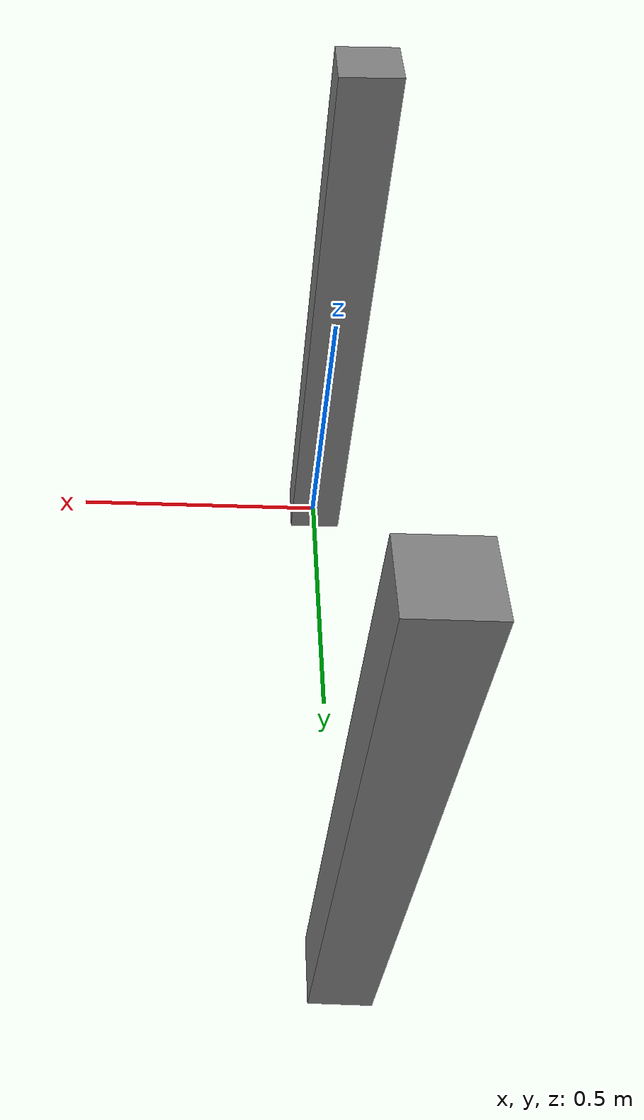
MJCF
<mujoco model="joint_attributes">
  <worldbody>
    <body name="body1" pos="0 0 0.5">
      <geom type="box" size="0.05 0.05 0.5"/>
      <joint name="custom_joint" type="hinge" axis="1 0 0" group="1"
             limited="true" range="-45 45"
             actuatorfrclimited="true" actuatorfrcrange="-10 10"
             actuatorgravcomp="true"
             armature="0.1"
             damping="0.5"
             frictionloss="0.2"
             margin="0.01"
             ref="0.1"
             solimplimit="0.8 0.9 0.002 0.6 3"
             solreflimit="0.01 0.5"
             solimpfriction="0.7 0.8 0.001 0.4 2"
             solreffriction="0.015 0.8"
             springdamper="0.5 0.3"
             springref="0.2"
             stiffness="100"/>
    </body>

    <body name="body2" pos="0 1 0.5">
      <geom type="box" size="0.05 0.05 0.5"/>
      <joint name="default_joint" type="slide" axis="0 1 0" group="0"
             limited="false" range="0 0.5"
             actuatorfrclimited="auto" actuatorfrcrange="0 0"
             actuatorgravcomp="false"
             armature="0.0"
             damping="0.0"
             frictionloss="0.0"
             margin="0.0"
             ref="0.0"
             solimplimit="0.9 0.95 0.001 0.5 2"
             solreflimit="0.02 1"
             solimpfriction="0.9 0.95 0.001 0.5 2"
             solreffriction="0.02 1"
             springdamper="0 0"
             springref="0.0"
             stiffness="0"/>
    </body>
  </worldbody>
</mujoco>
